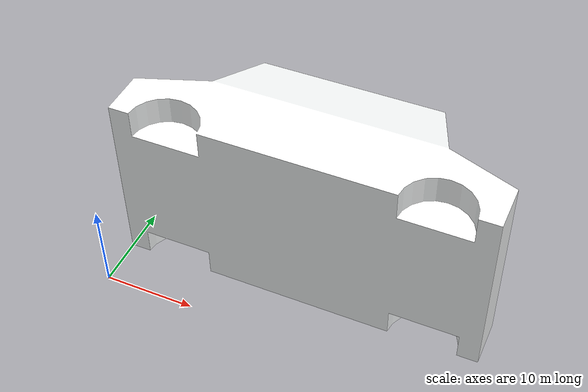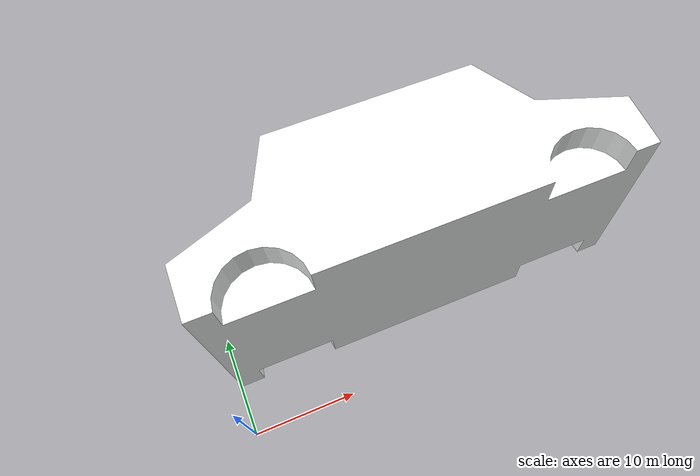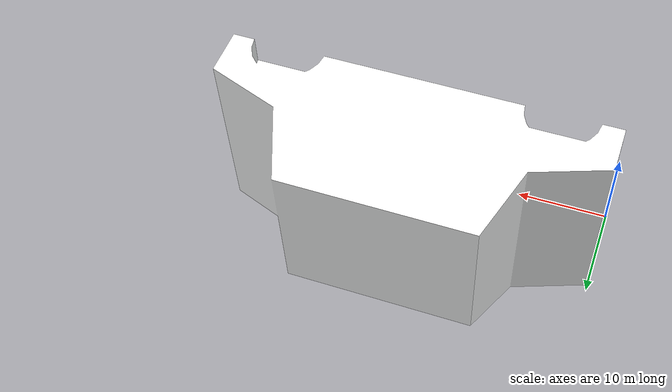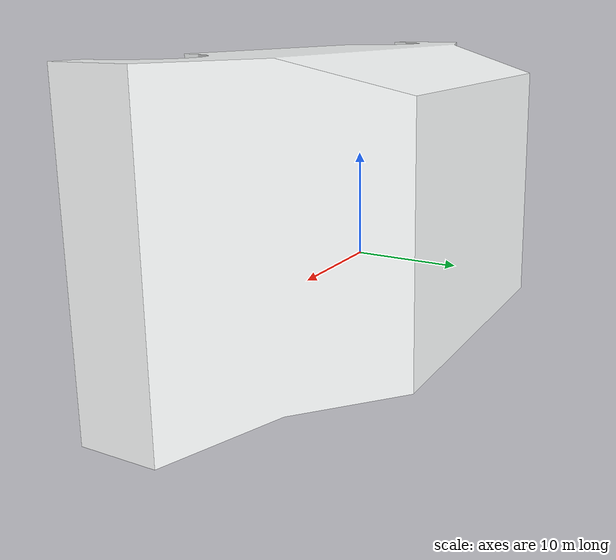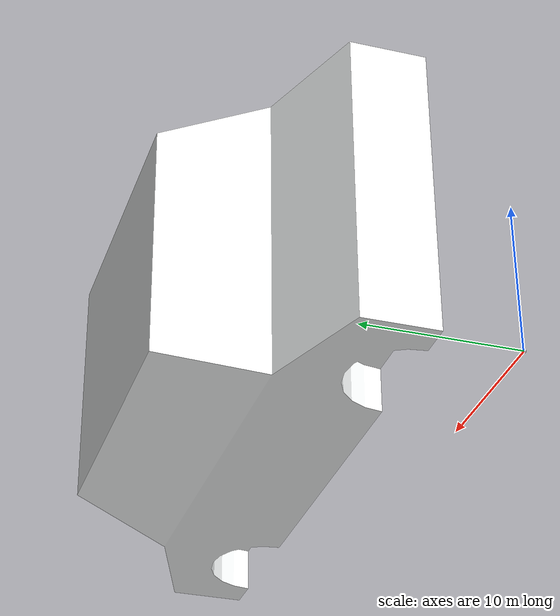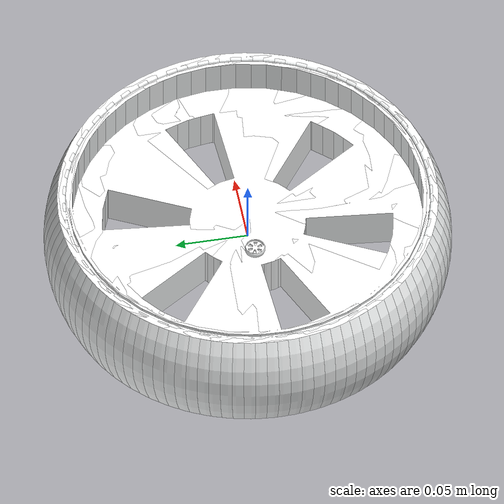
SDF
<sdf version='1.11'>
  <model name='Car_Bot'>
    <link name='CAR_BODY'>
      <inertial>
        <pose>-6.9388999999999993e-18 0.012359 1.3957e-18 0 0 0</pose>
        <mass>0.066610000000000003</mass>
        <inertia>
          <ixx>1.2286000000000001e-05</ixx>
          <ixy>-2.3375000000000001e-21</ixy>
          <ixz>4.7983999999999998e-22</ixz>
          <iyy>3.2577999999999999e-05</iyy>
          <iyz>-9.3690000000000005e-22</iyz>
          <izz>2.8742e-05</izz>
        </inertia>
      </inertial>
      <collision name='CAR_BODY_collision'>
        <pose>0 0 0 0 0 0</pose>
        <geometry>
          <mesh>
            <scale>1 1 1</scale>
            <uri>meshes/CAR_BODY.stl</uri>
          </mesh>
        </geometry>
      </collision>
      <visual name='CAR_BODY_visual'>
        <pose>0 0 0 0 0 0</pose>
        <geometry>
          <mesh>
            <scale>1 1 1</scale>
            <uri>meshes/CAR_BODY.stl</uri>
          </mesh>
        </geometry>
        <material>
          <diffuse>0.990199983 1 1 1</diffuse>
          <ambient>0.990199983 1 1 1</ambient>
        </material>
      </visual>
    </link>
    <joint name='joint1' type='revolute'>
      <pose relative_to='CAR_BODY'>0 0 0 0 0 0</pose>
      <parent>CAR_BODY</parent>
      <child>wheel1</child>
      <axis>
        <xyz>0 0 -1</xyz>
        <limit>
          <lower>0</lower>
          <upper>0</upper>
          <effort>0</effort>
          <velocity>0</velocity>
        </limit>
        <dynamics>
          <spring_reference>0</spring_reference>
          <spring_stiffness>0</spring_stiffness>
        </dynamics>
      </axis>
    </joint>
    <link name='wheel1'>
      <pose relative_to='joint1'>0 0 0 0 0 0</pose>
      <inertial>
        <pose>0.028000000000000001 8.0569000000000004e-19 -0.018969 0 0 0</pose>
        <mass>0.00025950000000000002</mass>
        <inertia>
          <ixx>4.2292999999999999e-09</ixx>
          <ixy>-2.0356999999999998e-24</ixy>
          <ixz>2.0730000000000001e-25</ixz>
          <iyy>4.2292999999999999e-09</iyy>
          <iyz>-6.1301999999999997e-25</iyz>
          <izz>8.0995000000000008e-09</izz>
        </inertia>
      </inertial>
      <collision name='wheel1_collision'>
        <pose>0 0 0 0 0 0</pose>
        <geometry>
          <mesh>
            <scale>1 1 1</scale>
            <uri>meshes/wheel1.stl</uri>
          </mesh>
        </geometry>
      </collision>
      <visual name='wheel1_visual'>
        <pose>0 0 0 0 0 0</pose>
        <geometry>
          <mesh>
            <scale>1 1 1</scale>
            <uri>meshes/wheel1.stl</uri>
          </mesh>
        </geometry>
        <material>
          <diffuse>0.990199983 1 1 1</diffuse>
          <ambient>0.990199983 1 1 1</ambient>
        </material>
      </visual>
    </link>
    <joint name='joint2' type='revolute'>
      <pose relative_to='CAR_BODY'>0 0 0 0 0 0</pose>
      <parent>CAR_BODY</parent>
      <child>wheel2</child>
      <axis>
        <xyz>0 0 -1</xyz>
        <limit>
          <lower>0</lower>
          <upper>0</upper>
          <effort>0</effort>
          <velocity>0</velocity>
        </limit>
        <dynamics>
          <spring_reference>0</spring_reference>
          <spring_stiffness>0</spring_stiffness>
        </dynamics>
      </axis>
    </joint>
    <link name='wheel2'>
      <pose relative_to='joint2'>0 0 0 0 0 0</pose>
      <inertial>
        <pose>-0.028000000000000001 8.1366999999999996e-19 -0.018969 0 0 0</pose>
        <mass>0.00025950000000000002</mass>
        <inertia>
          <ixx>4.2292999999999999e-09</ixx>
          <ixy>-7.5057e-25</ixy>
          <ixz>4.9880999999999999e-25</ixz>
          <iyy>4.2292999999999999e-09</iyy>
          <iyz>8.4437999999999994e-25</iyz>
          <izz>8.0995000000000008e-09</izz>
        </inertia>
      </inertial>
      <collision name='wheel2_collision'>
        <pose>0 0 0 0 0 0</pose>
        <geometry>
          <mesh>
            <scale>1 1 1</scale>
            <uri>meshes/wheel2.stl</uri>
          </mesh>
        </geometry>
      </collision>
      <visual name='wheel2_visual'>
        <pose>0 0 0 0 0 0</pose>
        <geometry>
          <mesh>
            <scale>1 1 1</scale>
            <uri>meshes/wheel2.stl</uri>
          </mesh>
        </geometry>
        <material>
          <diffuse>0.990199983 1 1 1</diffuse>
          <ambient>0.990199983 1 1 1</ambient>
        </material>
      </visual>
    </link>
    <joint name='joint3' type='revolute'>
      <pose relative_to='CAR_BODY'>0 0 0 0 0 0</pose>
      <parent>CAR_BODY</parent>
      <child>wheel3</child>
      <axis>
        <xyz>0 0 1</xyz>
        <limit>
          <lower>0</lower>
          <upper>0</upper>
          <effort>0</effort>
          <velocity>0</velocity>
        </limit>
        <dynamics>
          <spring_reference>0</spring_reference>
          <spring_stiffness>0</spring_stiffness>
        </dynamics>
      </axis>
    </joint>
    <link name='wheel3'>
      <pose relative_to='joint3'>0 0 0 0 0 0</pose>
      <inertial>
        <pose>-0.028000000000000001 -3.6480999999999999e-18 0.018969 0 0 0</pose>
        <mass>0.00025950000000000002</mass>
        <inertia>
          <ixx>4.2292999999999999e-09</ixx>
          <ixy>-1.1469e-24</ixy>
          <ixz>1.5805999999999999e-25</ixz>
          <iyy>4.2292999999999999e-09</iyy>
          <iyz>-7.7254000000000004e-25</iyz>
          <izz>8.0995000000000008e-09</izz>
        </inertia>
      </inertial>
      <collision name='wheel3_collision'>
        <pose>0 0 0 0 0 0</pose>
        <geometry>
          <mesh>
            <scale>1 1 1</scale>
            <uri>meshes/wheel3.stl</uri>
          </mesh>
        </geometry>
      </collision>
      <visual name='wheel3_visual'>
        <pose>0 0 0 0 0 0</pose>
        <geometry>
          <mesh>
            <scale>1 1 1</scale>
            <uri>meshes/wheel3.stl</uri>
          </mesh>
        </geometry>
        <material>
          <diffuse>0.990199983 1 1 1</diffuse>
          <ambient>0.990199983 1 1 1</ambient>
        </material>
      </visual>
    </link>
    <joint name='joint4' type='revolute'>
      <pose relative_to='CAR_BODY'>0 0 0 0 0 0</pose>
      <parent>CAR_BODY</parent>
      <child>wheel4</child>
      <axis>
        <xyz>0 0 1</xyz>
        <limit>
          <lower>0</lower>
          <upper>0</upper>
          <effort>0</effort>
          <velocity>0</velocity>
        </limit>
        <dynamics>
          <spring_reference>0</spring_reference>
          <spring_stiffness>0</spring_stiffness>
        </dynamics>
      </axis>
    </joint>
    <link name='wheel4'>
      <pose relative_to='joint4'>0 0 0 0 0 0</pose>
      <inertial>
        <pose>0.028000000000000001 -2.7405999999999999e-18 0.018969 0 0 0</pose>
        <mass>0.00025950000000000002</mass>
        <inertia>
          <ixx>4.2292999999999999e-09</ixx>
          <ixy>-2.4119000000000001e-24</ixy>
          <ixz>2.3968999999999999e-26</ixz>
          <iyy>4.2292999999999999e-09</iyy>
          <iyz>4.0847999999999998e-25</iyz>
          <izz>8.0995000000000008e-09</izz>
        </inertia>
      </inertial>
      <collision name='wheel4_collision'>
        <pose>0 0 0 0 0 0</pose>
        <geometry>
          <mesh>
            <scale>1 1 1</scale>
            <uri>meshes/wheel4.stl</uri>
          </mesh>
        </geometry>
      </collision>
      <visual name='wheel4_visual'>
        <pose>0 0 0 0 0 0</pose>
        <geometry>
          <mesh>
            <scale>1 1 1</scale>
            <uri>meshes/wheel4.stl</uri>
          </mesh>
        </geometry>
        <material>
          <diffuse>0.990199983 1 1 1</diffuse>
          <ambient>0.990199983 1 1 1</ambient>
        </material>
      </visual>
    </link>
  </model>
</sdf>
